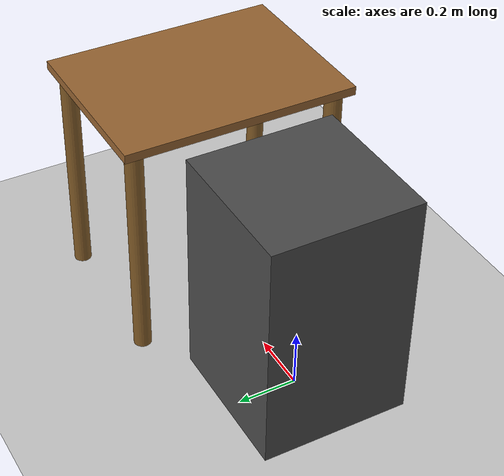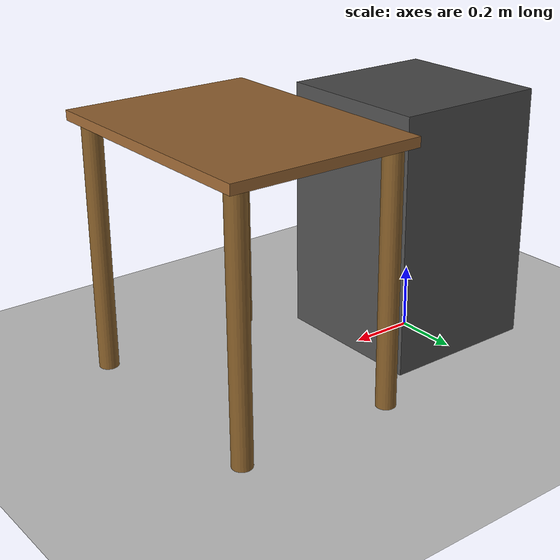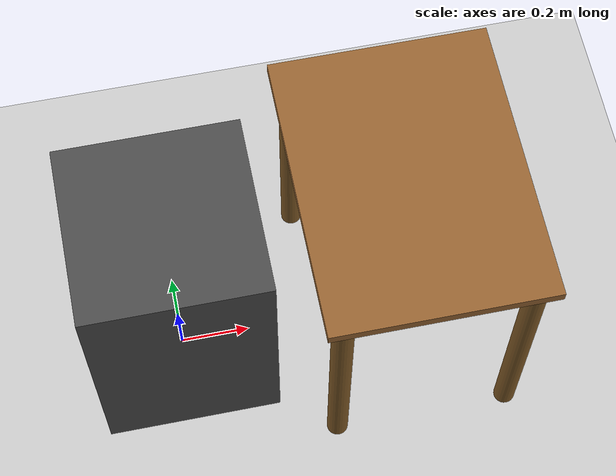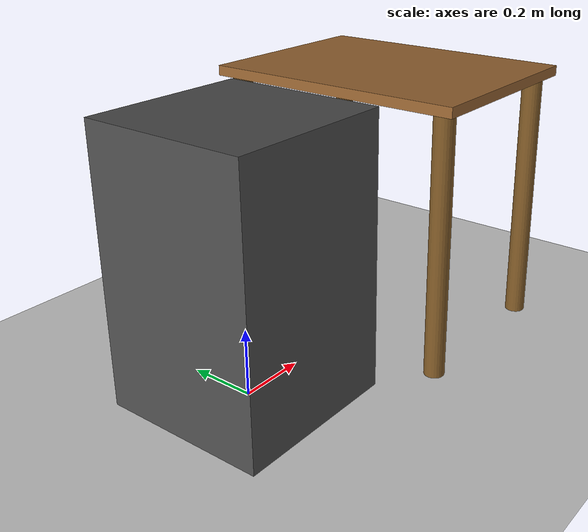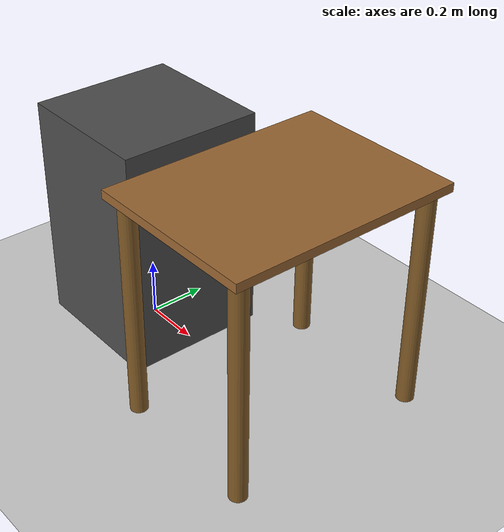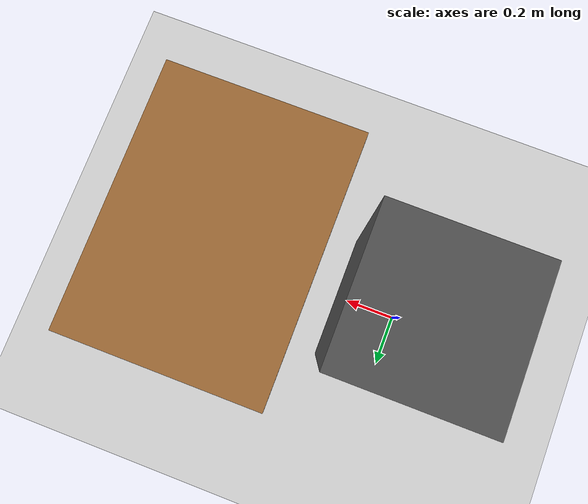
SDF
<?xml version="1.0"?>
<sdf version="1.9">
  <world name="catalyst_workspace">

    <!-- ==================== GRAVITY ==================== -->
    <gravity>0 0 -9.81</gravity>

    <!-- ==================== PHYSICS ==================== -->
    <physics name="default_physics" type="bullet">
      <max_step_size>0.001</max_step_size>
      <real_time_factor>1</real_time_factor>
      <real_time_update_rate>1000</real_time_update_rate>
    </physics>

    <!-- ==================== GZ HARMONIC PLUGINS ==================== -->
    <plugin filename="gz-sim-physics-system" name="gz::sim::systems::Physics">
    </plugin>
    <plugin filename="gz-sim-user-commands-system" name="gz::sim::systems::UserCommands">
    </plugin>
    <plugin filename="gz-sim-scene-broadcaster-system" name="gz::sim::systems::SceneBroadcaster">
    </plugin>

    <!-- ==================== SCENE ==================== -->
    <scene>
      <ambient>0.4 0.4 0.4 1</ambient>
      <background>0.7 0.7 0.7 1</background>
      <shadows>true</shadows>
    </scene>

    <!-- ==================== GROUND PLANE ==================== -->
    <model name="ground_plane">
      <static>true</static>
      <link name="ground_link">
        <collision name="ground_collision">
          <geometry>
            <plane>
              <normal>0 0 1</normal>
              <size>10 10</size>
            </plane>
          </geometry>
          <surface>
            <friction>
              <ode>
                <mu>100</mu>
                <mu2>50</mu2>
              </ode>
            </friction>
          </surface>
        </collision>
        <visual name="ground_visual">
          <geometry>
            <plane>
              <normal>0 0 1</normal>
              <size>10 10</size>
            </plane>
          </geometry>
          <material>
            <ambient>0.8 0.8 0.8 1</ambient>
            <diffuse>0.8 0.8 0.8 1</diffuse>
            <specular>0.1 0.1 0.1 1</specular>
          </material>
        </visual>
      </link>
    </model>

    <!-- ==================== ROBOT STAND ==================== -->
    <!--
      Position: Center of stand at (0, 0, 0.4)
      This places the bottom at Z=0 and top at Z=0.8
    -->
    <include>
      <name>robot_stand</name>
      <uri>model://robot_stand</uri>
      <!-- X    Y    Z    Roll Pitch Yaw -->
      <pose>0.0  0.0  0.4  0    0     0</pose>
    </include>

    <!-- ==================== WORK TABLE ==================== -->
    <!--
      Position: Table top surface at Z=0.8 (same as robot base)
      Table is placed in front of robot (+X direction)
    -->
    <include>
      <name>work_table</name>
      <uri>model://table</uri>
      <!-- X     Y    Z    Roll Pitch Yaw -->
      <pose>0.65  0.0  0.8  0    0     1.5708</pose>
    </include>

    <!-- ==================== LIGHTING ==================== -->

    <!-- Main directional light (sun) -->
    <light name="sun" type="directional">
      <cast_shadows>true</cast_shadows>
      <pose>0 0 10 0 0 0</pose>
      <diffuse>0.8 0.8 0.8 1</diffuse>
      <specular>0.2 0.2 0.2 1</specular>
      <direction>-0.5 0.1 -0.9</direction>
    </light>

    <!-- Fill light from front -->
    <light name="fill_light" type="directional">
      <cast_shadows>false</cast_shadows>
      <pose>2 0 3 0 0 0</pose>
      <diffuse>0.3 0.3 0.3 1</diffuse>
      <specular>0.0 0.0 0.0 1</specular>
      <direction>-1 0 -0.5</direction>
    </light>

    <!-- Point light above workspace -->
    <light name="workspace_light" type="point">
      <cast_shadows>false</cast_shadows>
      <pose>0.3 0 2.0 0 0 0</pose>
      <diffuse>0.5 0.5 0.5 1</diffuse>
      <specular>0.1 0.1 0.1 1</specular>
      <attenuation>
        <range>5</range>
        <constant>0.5</constant>
        <linear>0.01</linear>
        <quadratic>0.001</quadratic>
      </attenuation>
    </light>

  </world>
</sdf>

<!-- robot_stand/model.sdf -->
<sdf version="1.6">
  <model name="robot_stand">
    <static>true</static>

    <link name="stand_link">
      <!-- Inertial properties (not used for static model, but good practice) -->
      <inertial>
        <mass>50.0</mass>
        <inertia>
          <ixx>4.17</ixx>
          <ixy>0</ixy>
          <ixz>0</ixz>
          <iyy>4.17</iyy>
          <iyz>0</iyz>
          <izz>2.08</izz>
        </inertia>
      </inertial>

      <!-- Collision geometry -->
      <collision name="stand_collision">
        <geometry>
          <box>
            <!-- MODIFY THESE VALUES TO CHANGE STAND SIZE -->
            <size>0.50 0.50 0.80</size>  <!-- X Y Z in meters -->
          </box>
        </geometry>
        <surface>
          <friction>
            <ode>
              <mu>1.0</mu>
              <mu2>1.0</mu2>
            </ode>
          </friction>
        </surface>
      </collision>

      <!-- Visual geometry -->
      <visual name="stand_visual">
        <geometry>
          <box>
            <!-- MUST MATCH COLLISION SIZE -->
            <size>0.50 0.50 0.80</size>  <!-- X Y Z in meters -->
          </box>
        </geometry>
        <material>
          <ambient>0.3 0.3 0.3 1</ambient>
          <diffuse>0.3 0.3 0.3 1</diffuse>
          <specular>0.1 0.1 0.1 1</specular>
        </material>
      </visual>
    </link>
  </model>
</sdf>

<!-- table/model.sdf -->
<sdf version="1.6">
  <model name="work_table">
    <static>true</static>

    <!-- ==================== TABLE TOP ==================== -->
    <link name="table_top">
      <pose>0 0 -0.015 0 0 0</pose>  <!-- Offset down by half thickness -->

      <inertial>
        <mass>10.0</mass>
        <inertia>
          <ixx>0.31</ixx><ixy>0</ixy><ixz>0</ixz>
          <iyy>0.54</iyy><iyz>0</iyz>
          <izz>0.83</izz>
        </inertia>
      </inertial>

      <collision name="top_collision">
        <geometry>
          <box>
            <!-- TABLE TOP DIMENSIONS: X(width) Y(depth) Z(thickness) -->
            <size>0.80 0.60 0.03</size>
          </box>
        </geometry>
        <surface>
          <friction>
            <ode>
              <mu>0.8</mu>
              <mu2>0.8</mu2>
            </ode>
          </friction>
        </surface>
      </collision>

      <visual name="top_visual">
        <geometry>
          <box>
            <size>0.80 0.60 0.03</size>
          </box>
        </geometry>
        <material>
          <!-- Wood-like brown color -->
          <ambient>0.6 0.4 0.2 1</ambient>
          <diffuse>0.6 0.4 0.2 1</diffuse>
          <specular>0.2 0.2 0.2 1</specular>
        </material>
      </visual>
    </link>

    <!-- ==================== TABLE LEGS ==================== -->

    <!-- LEG 1: Front-Left (-X, +Y) -->
    <link name="leg_1">
      <!-- Pose: x, y, z(center of leg), roll, pitch, yaw -->
      <!-- Z = -(table_top_thickness + leg_height/2) = -(0.03 + 0.77/2) = -0.415 -->
      <pose>-0.35 0.25 -0.415 0 0 0</pose>

      <inertial>
        <mass>1.0</mass>
        <inertia>
          <ixx>0.05</ixx><ixy>0</ixy><ixz>0</ixz>
          <iyy>0.05</iyy><iyz>0</iyz>
          <izz>0.0005</izz>
        </inertia>
      </inertial>

      <collision name="leg_1_collision">
        <geometry>
          <cylinder>
            <!-- LEG DIMENSIONS -->
            <radius>0.03</radius>
            <length>0.77</length>  <!-- Height = total_height - top_thickness -->
          </cylinder>
        </geometry>
      </collision>

      <visual name="leg_1_visual">
        <geometry>
          <cylinder>
            <radius>0.03</radius>
            <length>0.77</length>
          </cylinder>
        </geometry>
        <material>
          <ambient>0.5 0.35 0.15 1</ambient>
          <diffuse>0.5 0.35 0.15 1</diffuse>
          <specular>0.1 0.1 0.1 1</specular>
        </material>
      </visual>
    </link>

    <!-- LEG 2: Front-Right (+X, +Y) -->
    <link name="leg_2">
      <pose>0.35 0.25 -0.415 0 0 0</pose>

      <inertial>
        <mass>1.0</mass>
        <inertia>
          <ixx>0.05</ixx><ixy>0</ixy><ixz>0</ixz>
          <iyy>0.05</iyy><iyz>0</iyz>
          <izz>0.0005</izz>
        </inertia>
      </inertial>

      <collision name="leg_2_collision">
        <geometry>
          <cylinder>
            <radius>0.03</radius>
            <length>0.77</length>
          </cylinder>
        </geometry>
      </collision>

      <visual name="leg_2_visual">
        <geometry>
          <cylinder>
            <radius>0.03</radius>
            <length>0.77</length>
          </cylinder>
        </geometry>
        <material>
          <ambient>0.5 0.35 0.15 1</ambient>
          <diffuse>0.5 0.35 0.15 1</diffuse>
          <specular>0.1 0.1 0.1 1</specular>
        </material>
      </visual>
    </link>

    <!-- LEG 3: Back-Left (-X, -Y) -->
    <link name="leg_3">
      <pose>-0.35 -0.25 -0.415 0 0 0</pose>

      <inertial>
        <mass>1.0</mass>
        <inertia>
          <ixx>0.05</ixx><ixy>0</ixy><ixz>0</ixz>
          <iyy>0.05</iyy><iyz>0</iyz>
          <izz>0.0005</izz>
        </inertia>
      </inertial>

      <collision name="leg_3_collision">
        <geometry>
          <cylinder>
            <radius>0.03</radius>
            <length>0.77</length>
          </cylinder>
        </geometry>
      </collision>

      <visual name="leg_3_visual">
        <geometry>
          <cylinder>
            <radius>0.03</radius>
            <length>0.77</length>
          </cylinder>
        </geometry>
        <material>
          <ambient>0.5 0.35 0.15 1</ambient>
          <diffuse>0.5 0.35 0.15 1</diffuse>
          <specular>0.1 0.1 0.1 1</specular>
        </material>
      </visual>
    </link>

    <!-- LEG 4: Back-Right (+X, -Y) -->
    <link name="leg_4">
      <pose>0.35 -0.25 -0.415 0 0 0</pose>

      <inertial>
        <mass>1.0</mass>
        <inertia>
          <ixx>0.05</ixx><ixy>0</ixy><ixz>0</ixz>
          <iyy>0.05</iyy><iyz>0</iyz>
          <izz>0.0005</izz>
        </inertia>
      </inertial>

      <collision name="leg_4_collision">
        <geometry>
          <cylinder>
            <radius>0.03</radius>
            <length>0.77</length>
          </cylinder>
        </geometry>
      </collision>

      <visual name="leg_4_visual">
        <geometry>
          <cylinder>
            <radius>0.03</radius>
            <length>0.77</length>
          </cylinder>
        </geometry>
        <material>
          <ambient>0.5 0.35 0.15 1</ambient>
          <diffuse>0.5 0.35 0.15 1</diffuse>
          <specular>0.1 0.1 0.1 1</specular>
        </material>
      </visual>
    </link>

    <!-- Fixed joints to connect legs to table top -->
    <joint name="leg_1_joint" type="fixed">
      <parent>table_top</parent>
      <child>leg_1</child>
    </joint>
    <joint name="leg_2_joint" type="fixed">
      <parent>table_top</parent>
      <child>leg_2</child>
    </joint>
    <joint name="leg_3_joint" type="fixed">
      <parent>table_top</parent>
      <child>leg_3</child>
    </joint>
    <joint name="leg_4_joint" type="fixed">
      <parent>table_top</parent>
      <child>leg_4</child>
    </joint>

  </model>
</sdf>
